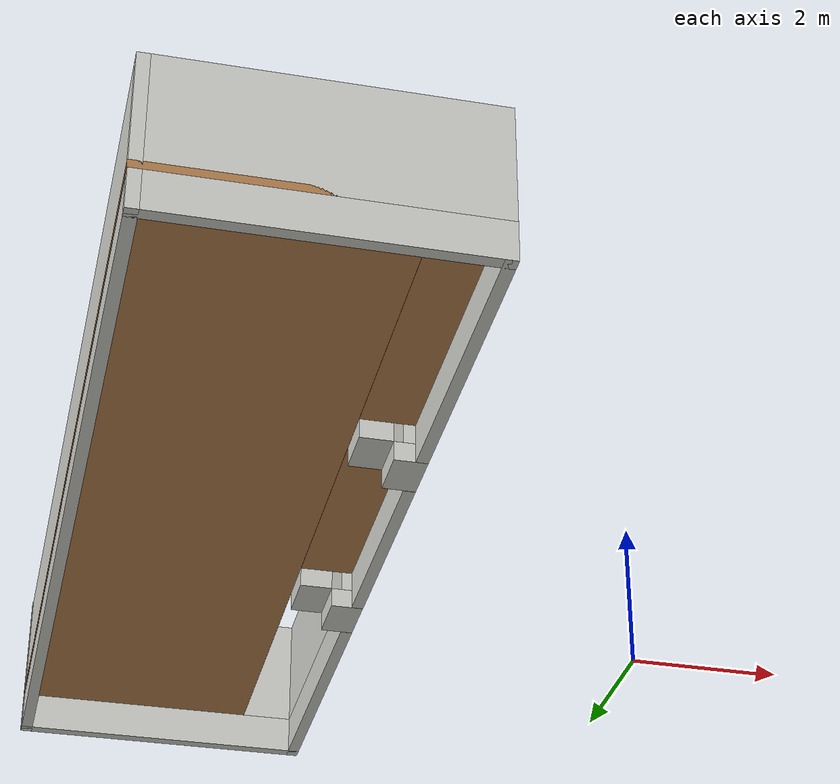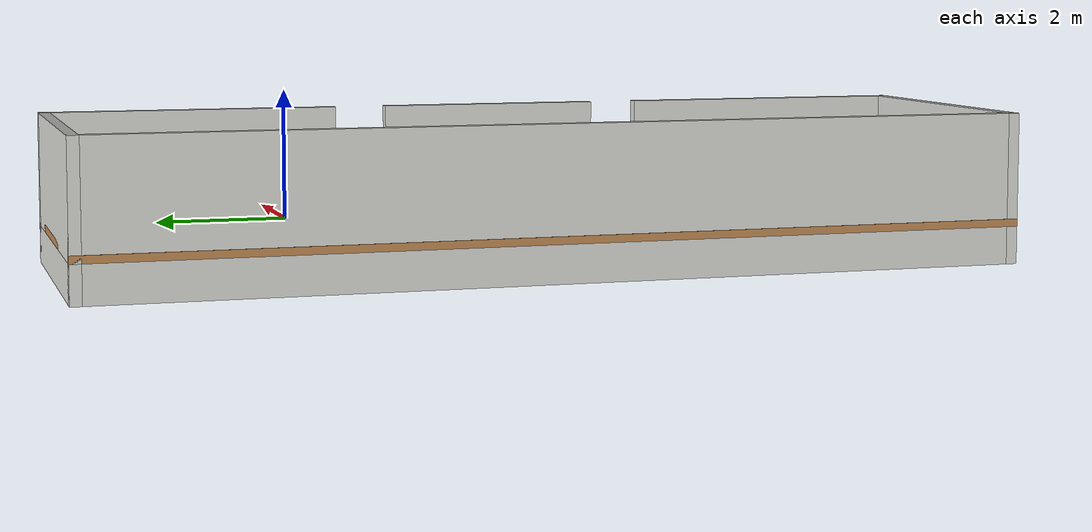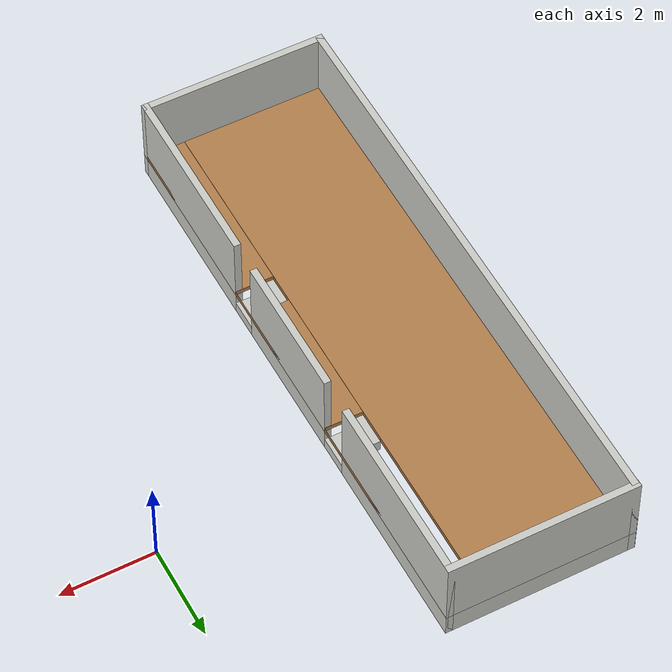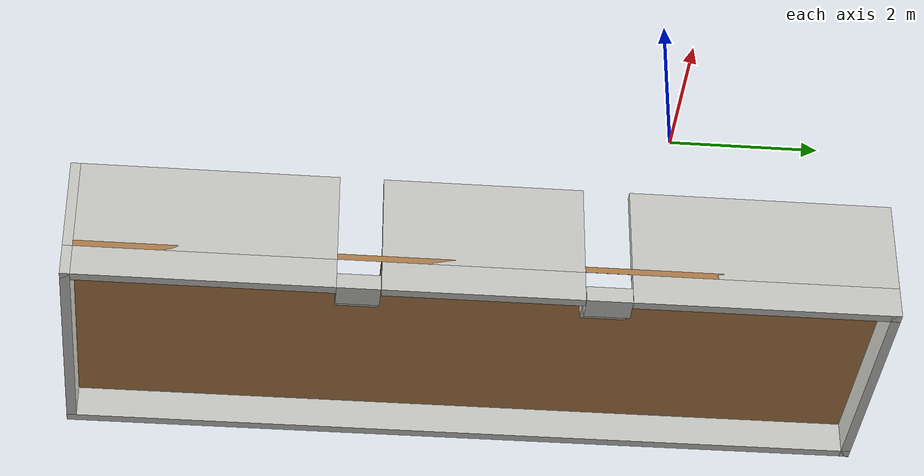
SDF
<?xml version='1.0'?>
<sdf version='1.7'>
  <model name='lab_2step'>
    <pose>-3.926 -2.137 0 0 -0 0</pose>
    <link name='Floor_0'>
      <pose>-1.926 0 0.5 0 -0 0</pose>
      <visual name='Floor_0_Visual_0'>
        <pose>-0.410967 0 0.05 0 -0 0</pose>
        <geometry>
          <box>
            <size>3.17807 12.358 0.1</size>
          </box>
        </geometry>
        <material>
          <script>
            <uri>file://media/materials/scripts/gazebo.material</uri>
            <name>Gazebo/Wood</name>
          </script>
          <ambient>1 1 1 1</ambient>
        </material>
        <meta>
          <layer>1</layer>
        </meta>
      </visual>
      <collision name='Floor_0_Collision_0'>
        <geometry>
          <box>
            <size>3.17807 12.358 0.1</size>
          </box>
        </geometry>
        <pose>-0.410967 0 0.05 0 -0 0</pose>
      </collision>
      <visual name='Floor_0_Visual_1'>
        <pose>1.179 -2.34688 0.05 0 -0 0</pose>
        <geometry>
          <box>
            <size>0.001859 7.66424 0.1</size>
          </box>
        </geometry>
        <material>
          <script>
            <uri>file://media/materials/scripts/gazebo.material</uri>
            <name>Gazebo/Wood</name>
          </script>
          <ambient>1 1 1 1</ambient>
        </material>
        <meta>
          <layer>1</layer>
        </meta>
      </visual>
      <collision name='Floor_0_Collision_1'>
        <geometry>
          <box>
            <size>0.001859 7.66424 0.1</size>
          </box>
        </geometry>
        <pose>1.179 -2.34688 0.05 0 -0 0</pose>
      </collision>
      <visual name='Floor_0_Visual_2'>
        <pose>1.58996 -4.17893 0.05 0 -0 0</pose>
        <geometry>
          <box>
            <size>0.820076 4.00014 0.1</size>
          </box>
        </geometry>
        <material>
          <script>
            <uri>file://media/materials/scripts/gazebo.material</uri>
            <name>Gazebo/Wood</name>
          </script>
          <ambient>1 1 1 1</ambient>
        </material>
        <meta>
          <layer>1</layer>
        </meta>
      </visual>
      <collision name='Floor_0_Collision_2'>
        <geometry>
          <box>
            <size>0.820076 4.00014 0.1</size>
          </box>
        </geometry>
        <pose>1.58996 -4.17893 0.05 0 -0 0</pose>
      </collision>
      <visual name='Floor_0_Visual_3'>
        <pose>1.99996 2.00007 0.05 0 -0 0</pose>
        <geometry>
          <box>
            <size>7.6e-05 8.35786 0.1</size>
          </box>
        </geometry>
        <material>
          <script>
            <uri>file://media/materials/scripts/gazebo.material</uri>
            <name>Gazebo/Wood</name>
          </script>
          <ambient>1 1 1 1</ambient>
        </material>
        <meta>
          <layer>1</layer>
        </meta>
      </visual>
      <collision name='Floor_0_Collision_3'>
        <geometry>
          <box>
            <size>7.6e-05 8.35786 0.1</size>
          </box>
        </geometry>
        <pose>1.99996 2.00007 0.05 0 -0 0</pose>
      </collision>
      <visual name='Floor_0_Visual_4'>
        <pose>1.58992 -0.021811 0.05 0 -0 0</pose>
        <geometry>
          <box>
            <size>0.82 3.0141 0.1</size>
          </box>
        </geometry>
        <material>
          <script>
            <uri>file://media/materials/scripts/gazebo.material</uri>
            <name>Gazebo/Wood</name>
          </script>
          <ambient>1 1 1 1</ambient>
        </material>
        <meta>
          <layer>1</layer>
        </meta>
      </visual>
      <collision name='Floor_0_Collision_4'>
        <geometry>
          <box>
            <size>0.82 3.0141 0.1</size>
          </box>
        </geometry>
        <pose>1.58992 -0.021811 0.05 0 -0 0</pose>
      </collision>
      <visual name='Floor_0_Visual_5'>
        <pose>1.999 3.83212 0.05 0 -0 0</pose>
        <geometry>
          <box>
            <size>0.001859 4.69376 0.1</size>
          </box>
        </geometry>
        <material>
          <script>
            <uri>file://media/materials/scripts/gazebo.material</uri>
            <name>Gazebo/Wood</name>
          </script>
          <ambient>1 1 1 1</ambient>
        </material>
        <meta>
          <layer>1</layer>
        </meta>
      </visual>
      <collision name='Floor_0_Collision_5'>
        <geometry>
          <box>
            <size>0.001859 4.69376 0.1</size>
          </box>
        </geometry>
        <pose>1.999 3.83212 0.05 0 -0 0</pose>
      </collision>
      <visual name='Floor_0_Visual_6'>
        <pose>1.179 4.17762 0.05 0 -0 0</pose>
        <geometry>
          <box>
            <size>0.001859 4.00276 0.1</size>
          </box>
        </geometry>
        <material>
          <script>
            <uri>file://media/materials/scripts/gazebo.material</uri>
            <name>Gazebo/Wood</name>
          </script>
          <ambient>1 1 1 1</ambient>
        </material>
        <meta>
          <layer>1</layer>
        </meta>
      </visual>
      <collision name='Floor_0_Collision_6'>
        <geometry>
          <box>
            <size>0.001859 4.00276 0.1</size>
          </box>
        </geometry>
        <pose>1.179 4.17762 0.05 0 -0 0</pose>
      </collision>
    </link>
    <link name='Stairs_4'>
      <visual name='Stairs_4_Visual_0'>
        <pose>-0.132935 1.83074 0.125 0 0 -1.5708</pose>
        <geometry>
          <box>
            <size>0.691 0.41 0.25</size>
          </box>
        </geometry>
        <material>
          <script>
            <uri>file://media/materials/scripts/gazebo.material</uri>
            <name>Gazebo/CeilingTiled</name>
          </script>
          <ambient>1 1 1 1</ambient>
        </material>
        <meta>
          <layer>1</layer>
        </meta>
      </visual>
      <collision name='Stairs_4_Collision_0'>
        <geometry>
          <box>
            <size>0.691 0.41 0.25</size>
          </box>
        </geometry>
        <pose>-0.132935 1.83074 0.125 0 0 -1.5708</pose>
      </collision>
      <visual name='Stairs_4_Visual_1'>
        <pose>-0.542934 1.83074 0.375 0 0 -1.5708</pose>
        <geometry>
          <box>
            <size>0.691 0.41 0.25</size>
          </box>
        </geometry>
        <material>
          <script>
            <uri>file://media/materials/scripts/gazebo.material</uri>
            <name>Gazebo/CeilingTiled</name>
          </script>
          <ambient>1 1 1 1</ambient>
        </material>
        <meta>
          <layer>1</layer>
        </meta>
      </visual>
      <collision name='Stairs_4_Collision_1'>
        <geometry>
          <box>
            <size>0.691 0.41 0.25</size>
          </box>
        </geometry>
        <pose>-0.542934 1.83074 0.375 0 0 -1.5708</pose>
      </collision>
    </link>
    <link name='Stairs_5'>
      <visual name='Stairs_5_Visual_0'>
        <pose>-0.131076 -1.85386 0.125 0 0 -1.5708</pose>
        <geometry>
          <box>
            <size>0.65 0.41 0.25</size>
          </box>
        </geometry>
        <material>
          <script>
            <uri>file://media/materials/scripts/gazebo.material</uri>
            <name>Gazebo/CeilingTiled</name>
          </script>
          <ambient>1 1 1 1</ambient>
        </material>
        <meta>
          <layer>1</layer>
        </meta>
      </visual>
      <collision name='Stairs_5_Collision_0'>
        <geometry>
          <box>
            <size>0.65 0.41 0.25</size>
          </box>
        </geometry>
        <pose>-0.131076 -1.85386 0.125 0 0 -1.5708</pose>
      </collision>
      <visual name='Stairs_5_Visual_1'>
        <pose>-0.541076 -1.85386 0.375 0 0 -1.5708</pose>
        <geometry>
          <box>
            <size>0.65 0.41 0.25</size>
          </box>
        </geometry>
        <material>
          <script>
            <uri>file://media/materials/scripts/gazebo.material</uri>
            <name>Gazebo/CeilingTiled</name>
          </script>
          <ambient>1 1 1 1</ambient>
        </material>
        <meta>
          <layer>1</layer>
        </meta>
      </visual>
      <collision name='Stairs_5_Collision_1'>
        <geometry>
          <box>
            <size>0.65 0.41 0.25</size>
          </box>
        </geometry>
        <pose>-0.541076 -1.85386 0.375 0 0 -1.5708</pose>
      </collision>
    </link>
    <link name='Wall_23'>
      <collision name='Wall_23_Collision'>
        <geometry>
          <box>
            <size>4 0.15 0.5</size>
          </box>
        </geometry>
        <pose>0 0 0.25 0 -0 0</pose>
      </collision>
      <visual name='Wall_23_Visual'>
        <pose>0 0 0.25 0 -0 0</pose>
        <geometry>
          <box>
            <size>4 0.15 0.5</size>
          </box>
        </geometry>
        <material>
          <script>
            <uri>file://media/materials/scripts/gazebo.material</uri>
            <name>Gazebo/CeilingTiled</name>
          </script>
          <ambient>1 1 1 1</ambient>
        </material>
        <meta>
          <layer>0</layer>
        </meta>
      </visual>
      <pose>-1.926 6.104 0 0 -0 0</pose>
    </link>
    <link name='Wall_24'>
      <collision name='Wall_24_Collision'>
        <geometry>
          <box>
            <size>4 0.15 0.5</size>
          </box>
        </geometry>
        <pose>0 0 0.25 0 -0 0</pose>
      </collision>
      <visual name='Wall_24_Visual'>
        <pose>0 0 0.25 0 -0 0</pose>
        <geometry>
          <box>
            <size>4 0.15 0.5</size>
          </box>
        </geometry>
        <material>
          <script>
            <uri>file://media/materials/scripts/gazebo.material</uri>
            <name>Gazebo/CeilingTiled</name>
          </script>
          <ambient>1 1 1 1</ambient>
        </material>
        <meta>
          <layer>0</layer>
        </meta>
      </visual>
      <pose>-0.001 4.179 0 0 -0 -1.5708</pose>
    </link>
    <link name='Wall_27'>
      <collision name='Wall_27_Collision'>
        <geometry>
          <box>
            <size>4 0.15 0.5</size>
          </box>
        </geometry>
        <pose>0 0 0.25 0 -0 0</pose>
      </collision>
      <visual name='Wall_27_Visual'>
        <pose>0 0 0.25 0 -0 0</pose>
        <geometry>
          <box>
            <size>4 0.15 0.5</size>
          </box>
        </geometry>
        <material>
          <script>
            <uri>file://media/materials/scripts/gazebo.material</uri>
            <name>Gazebo/CeilingTiled</name>
          </script>
          <ambient>1 1 1 1</ambient>
        </material>
        <meta>
          <layer>0</layer>
        </meta>
      </visual>
      <pose>-0.001 -4.179 0 0 -0 -1.5708</pose>
    </link>
    <link name='Wall_28'>
      <collision name='Wall_28_Collision'>
        <geometry>
          <box>
            <size>3.993 0.15 0.5</size>
          </box>
        </geometry>
        <pose>0 0 0.25 0 -0 0</pose>
      </collision>
      <visual name='Wall_28_Visual'>
        <pose>0 0 0.25 0 -0 0</pose>
        <geometry>
          <box>
            <size>3.993 0.15 0.5</size>
          </box>
        </geometry>
        <material>
          <script>
            <uri>file://media/materials/scripts/gazebo.material</uri>
            <name>Gazebo/CeilingTiled</name>
          </script>
          <ambient>1 1 1 1</ambient>
        </material>
        <meta>
          <layer>0</layer>
        </meta>
      </visual>
      <pose>-1.9225 -6.104 0 0 -0 3.14159</pose>
    </link>
    <link name='Wall_29'>
      <collision name='Wall_29_Collision'>
        <geometry>
          <box>
            <size>12.358 0.15 0.5</size>
          </box>
        </geometry>
        <pose>0 0 0.25 0 -0 0</pose>
      </collision>
      <visual name='Wall_29_Visual'>
        <pose>0 0 0.25 0 -0 0</pose>
        <geometry>
          <box>
            <size>12.358 0.15 0.5</size>
          </box>
        </geometry>
        <material>
          <script>
            <uri>file://media/materials/scripts/gazebo.material</uri>
            <name>Gazebo/CeilingTiled</name>
          </script>
          <ambient>1 1 1 1</ambient>
        </material>
        <meta>
          <layer>0</layer>
        </meta>
      </visual>
      <pose>-3.844 0 0 0 -0 1.5708</pose>
    </link>
    <link name='Wall_34'>
      <collision name='Wall_34_Collision'>
        <geometry>
          <box>
            <size>3 0.15 0.5</size>
          </box>
        </geometry>
        <pose>0 0 0.25 0 -0 0</pose>
      </collision>
      <visual name='Wall_34_Visual'>
        <pose>0 0 0.25 0 -0 0</pose>
        <geometry>
          <box>
            <size>3 0.15 0.5</size>
          </box>
        </geometry>
        <material>
          <script>
            <uri>file://media/materials/scripts/gazebo.material</uri>
            <name>Gazebo/CeilingTiled</name>
          </script>
          <ambient>1 1 1 1</ambient>
        </material>
        <meta>
          <layer>0</layer>
        </meta>
      </visual>
      <pose>-0.001 -0.021 0 0 -0 -1.5708</pose>
    </link>
    <link name='Wall_37'>
      <collision name='Wall_37_Collision'>
        <geometry>
          <box>
            <size>4 0.15 1.5</size>
          </box>
        </geometry>
        <pose>0 0 0.75 0 -0 0</pose>
      </collision>
      <visual name='Wall_37_Visual'>
        <pose>0 0 0.75 0 -0 0</pose>
        <geometry>
          <box>
            <size>4 0.15 1.5</size>
          </box>
        </geometry>
        <material>
          <script>
            <uri>file://media/materials/scripts/gazebo.material</uri>
            <name>Gazebo/CeilingTiled</name>
          </script>
          <ambient>1 1 1 1</ambient>
        </material>
        <meta>
          <layer>1</layer>
        </meta>
      </visual>
      <pose>-1.926 6.104 0.5 0 -0 0</pose>
    </link>
    <link name='Wall_38'>
      <collision name='Wall_38_Collision'>
        <geometry>
          <box>
            <size>4 0.15 1.5</size>
          </box>
        </geometry>
        <pose>0 0 0.75 0 -0 0</pose>
      </collision>
      <visual name='Wall_38_Visual'>
        <pose>0 0 0.75 0 -0 0</pose>
        <geometry>
          <box>
            <size>4 0.15 1.5</size>
          </box>
        </geometry>
        <material>
          <script>
            <uri>file://media/materials/scripts/gazebo.material</uri>
            <name>Gazebo/CeilingTiled</name>
          </script>
          <ambient>1 1 1 1</ambient>
        </material>
        <meta>
          <layer>1</layer>
        </meta>
      </visual>
      <pose>-0.001 4.179 0.5 0 -0 -1.5708</pose>
    </link>
    <link name='Wall_39'>
      <collision name='Wall_39_Collision'>
        <geometry>
          <box>
            <size>4 0.15 1.5</size>
          </box>
        </geometry>
        <pose>0 0 0.75 0 -0 0</pose>
      </collision>
      <visual name='Wall_39_Visual'>
        <pose>0 0 0.75 0 -0 0</pose>
        <geometry>
          <box>
            <size>4 0.15 1.5</size>
          </box>
        </geometry>
        <material>
          <script>
            <uri>file://media/materials/scripts/gazebo.material</uri>
            <name>Gazebo/CeilingTiled</name>
          </script>
          <ambient>1 1 1 1</ambient>
        </material>
        <meta>
          <layer>1</layer>
        </meta>
      </visual>
      <pose>-0.001 -4.179 0.5 0 -0 -1.5708</pose>
    </link>
    <link name='Wall_40'>
      <collision name='Wall_40_Collision'>
        <geometry>
          <box>
            <size>3.993 0.15 1.5</size>
          </box>
        </geometry>
        <pose>0 0 0.75 0 -0 0</pose>
      </collision>
      <visual name='Wall_40_Visual'>
        <pose>0 0 0.75 0 -0 0</pose>
        <geometry>
          <box>
            <size>3.993 0.15 1.5</size>
          </box>
        </geometry>
        <material>
          <script>
            <uri>file://media/materials/scripts/gazebo.material</uri>
            <name>Gazebo/CeilingTiled</name>
          </script>
          <ambient>1 1 1 1</ambient>
        </material>
        <meta>
          <layer>1</layer>
        </meta>
      </visual>
      <pose>-1.9225 -6.104 0.5 0 -0 3.14159</pose>
    </link>
    <link name='Wall_41'>
      <collision name='Wall_41_Collision'>
        <geometry>
          <box>
            <size>12.358 0.15 1.5</size>
          </box>
        </geometry>
        <pose>0 0 0.75 0 -0 0</pose>
      </collision>
      <visual name='Wall_41_Visual'>
        <pose>0 0 0.75 0 -0 0</pose>
        <geometry>
          <box>
            <size>12.358 0.15 1.5</size>
          </box>
        </geometry>
        <material>
          <script>
            <uri>file://media/materials/scripts/gazebo.material</uri>
            <name>Gazebo/CeilingTiled</name>
          </script>
          <ambient>1 1 1 1</ambient>
        </material>
        <meta>
          <layer>1</layer>
        </meta>
      </visual>
      <pose>-3.844 0 0.5 0 -0 1.5708</pose>
    </link>
    <link name='Wall_42'>
      <collision name='Wall_42_Collision'>
        <geometry>
          <box>
            <size>3 0.15 1.5</size>
          </box>
        </geometry>
        <pose>0 0 0.75 0 -0 0</pose>
      </collision>
      <visual name='Wall_42_Visual'>
        <pose>0 0 0.75 0 -0 0</pose>
        <geometry>
          <box>
            <size>3 0.15 1.5</size>
          </box>
        </geometry>
        <material>
          <script>
            <uri>file://media/materials/scripts/gazebo.material</uri>
            <name>Gazebo/CeilingTiled</name>
          </script>
          <ambient>1 1 1 1</ambient>
        </material>
        <meta>
          <layer>1</layer>
        </meta>
      </visual>
      <pose>-0.001 -0.021 0.5 0 -0 -1.5708</pose>
    </link>
    <static>1</static>
  </model>
</sdf>
